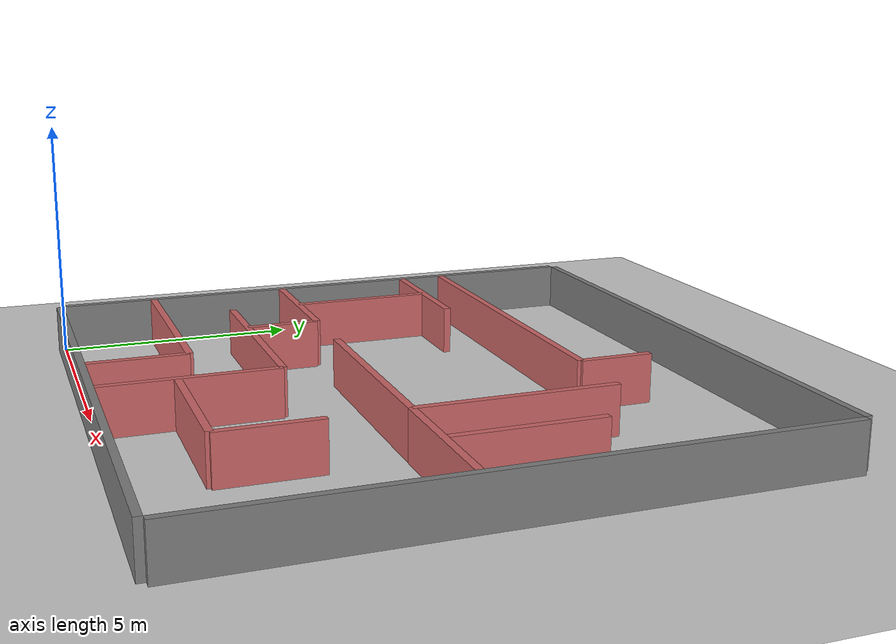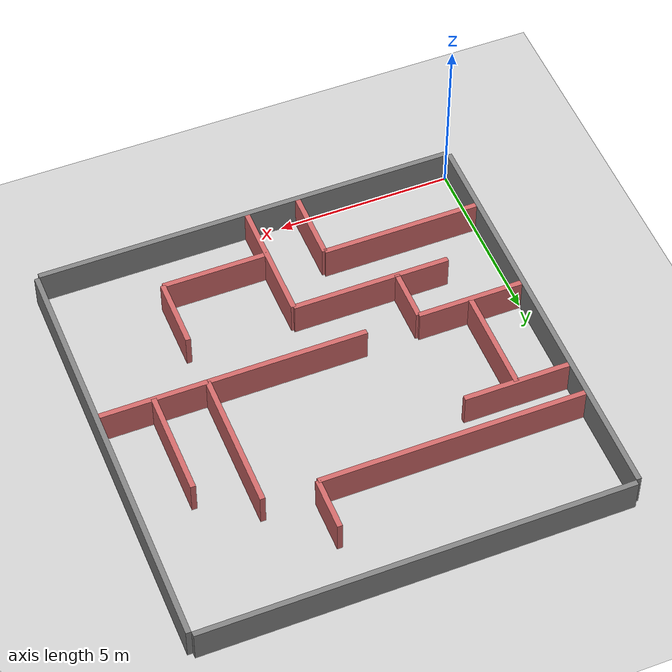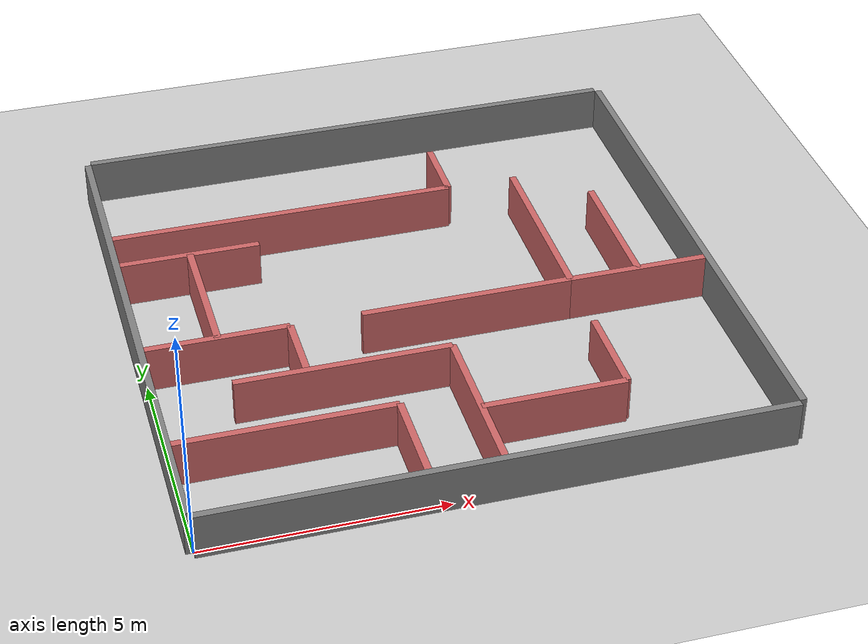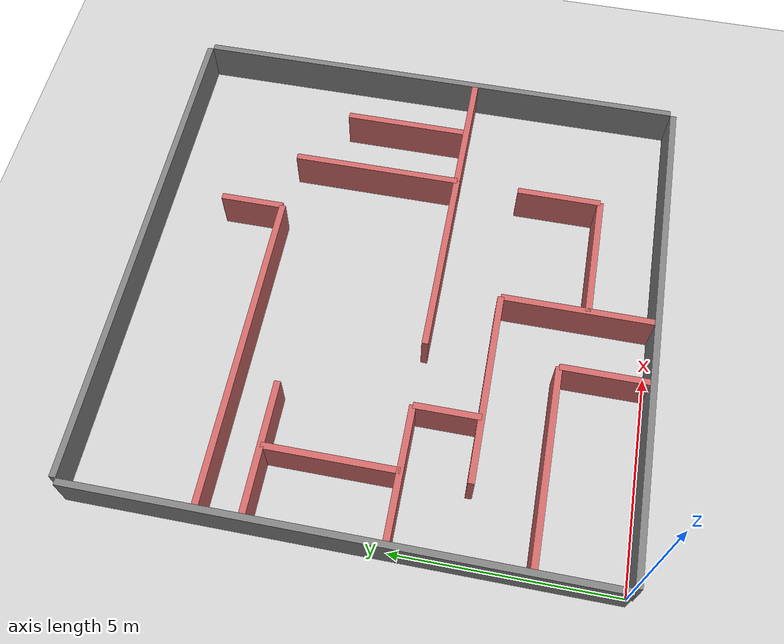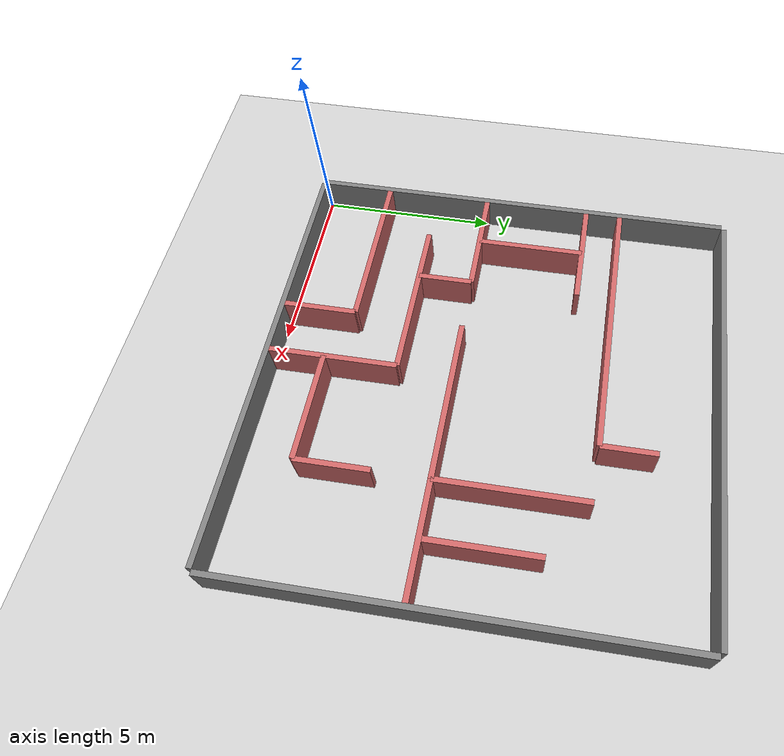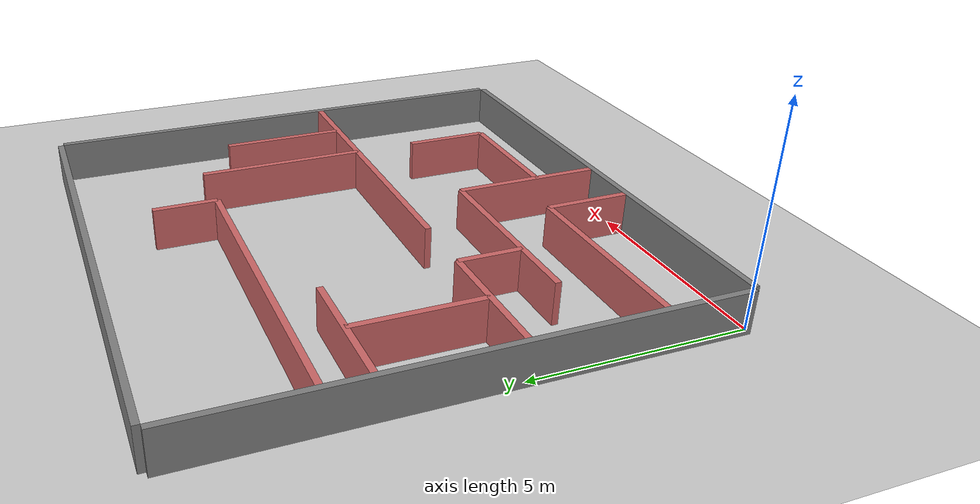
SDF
<?xml version="1.0" ?>
<sdf version="1.8">
  <world name="complex_maze_world">
    <physics name="1ms" type="ignored">
      <max_step_size>0.001</max_step_size>
      <real_time_factor>1.0</real_time_factor>
    </physics>
    <plugin filename="libignition-gazebo-physics-system.so" name="ignition::gazebo::systems::Physics"></plugin>
    <plugin filename="libignition-gazebo-user-commands-system.so" name="ignition::gazebo::systems::UserCommands"></plugin>
    <plugin filename="libignition-gazebo-scene-broadcaster-system.so" name="ignition::gazebo::systems::SceneBroadcaster"></plugin>
    <plugin filename="gz-sim-sensors-system" name="gz::sim::systems::Sensors">
      <render_engine>ogre2</render_engine>
    </plugin>

    <light type="directional" name="sun">
      <cast_shadows>true</cast_shadows>
      <pose>0 0 10 0 0 0</pose>
      <diffuse>0.8 0.8 0.8 1</diffuse>
      <specular>0.2 0.2 0.2 1</specular>
      <attenuation><range>1000</range><constant>0.9</constant><linear>0.01</linear><quadratic>0.001</quadratic></attenuation>
      <direction>-0.5 0.1 -0.9</direction>
    </light>

    <model name="ground_plane">
      <static>true</static>
      <link name="link">
        <collision name="collision"><geometry><plane><normal>0 0 1</normal><size>100 100</size></plane></geometry></collision>
        <visual name="visual"><geometry><plane><normal>0 0 1</normal><size>100 100</size></plane></geometry>
          <material><ambient>0.8 0.8 0.8 1</ambient><diffuse>0.8 0.8 0.8 1</diffuse><specular>0.8 0.8 0.8 1</specular></material>
        </visual>
      </link>
    </model>

    <!-- Outer Boundary Walls (12x12m) -->
    <model name="outer_south">
      <pose>6 -0.075 0.5 0 0 0</pose><static>true</static>
      <link name="link">
        <collision name="collision"><geometry><box><size>12 0.15 1</size></box></geometry></collision>
        <visual name="visual"><geometry><box><size>12 0.15 1</size></box></geometry><material><ambient>0.5 0.5 0.5 1</ambient><diffuse>0.5 0.5 0.5 1</diffuse></material></visual>
      </link>
    </model>
    <model name="outer_north">
      <pose>6 12.075 0.5 0 0 0</pose><static>true</static>
      <link name="link">
        <collision name="collision"><geometry><box><size>12 0.15 1</size></box></geometry></collision>
        <visual name="visual"><geometry><box><size>12 0.15 1</size></box></geometry><material><ambient>0.5 0.5 0.5 1</ambient><diffuse>0.5 0.5 0.5 1</diffuse></material></visual>
      </link>
    </model>
    <model name="outer_west">
      <pose>-0.075 6 0.5 0 0 1.5708</pose><static>true</static>
      <link name="link">
        <collision name="collision"><geometry><box><size>12 0.15 1</size></box></geometry></collision>
        <visual name="visual"><geometry><box><size>12 0.15 1</size></box></geometry><material><ambient>0.5 0.5 0.5 1</ambient><diffuse>0.5 0.5 0.5 1</diffuse></material></visual>
      </link>
    </model>
    <model name="outer_east">
      <pose>12.075 6 0.5 0 0 1.5708</pose><static>true</static>
      <link name="link">
        <collision name="collision"><geometry><box><size>12 0.15 1</size></box></geometry></collision>
        <visual name="visual"><geometry><box><size>12 0.15 1</size></box></geometry><material><ambient>0.5 0.5 0.5 1</ambient><diffuse>0.5 0.5 0.5 1</diffuse></material></visual>
      </link>
    </model>

    <!-- Zone 1: Bottom-left barriers -->
    <model name="w1"><pose>2.25 2 0.5 0 0 0</pose><static>true</static><link name="link"><collision name="c"><geometry><box><size>4.5 0.15 1</size></box></geometry></collision><visual name="v"><geometry><box><size>4.5 0.15 1</size></box></geometry><material><ambient>0.8 0.4 0.4 1</ambient><diffuse>0.8 0.4 0.4 1</diffuse></material></visual></link></model>
    <model name="w2"><pose>4.5 1 0.5 0 0 1.5708</pose><static>true</static><link name="link"><collision name="c"><geometry><box><size>2 0.15 1</size></box></geometry></collision><visual name="v"><geometry><box><size>2 0.15 1</size></box></geometry><material><ambient>0.8 0.4 0.4 1</ambient><diffuse>0.8 0.4 0.4 1</diffuse></material></visual></link></model>
    <model name="w3"><pose>3.75 3.5 0.5 0 0 0</pose><static>true</static><link name="link"><collision name="c"><geometry><box><size>4.5 0.15 1</size></box></geometry></collision><visual name="v"><geometry><box><size>4.5 0.15 1</size></box></geometry><material><ambient>0.8 0.4 0.4 1</ambient><diffuse>0.8 0.4 0.4 1</diffuse></material></visual></link></model>

    <!-- Zone 2: U-Trap 1 -->
    <model name="w4"><pose>6 1.75 0.5 0 0 1.5708</pose><static>true</static><link name="link"><collision name="c"><geometry><box><size>3.5 0.15 1</size></box></geometry></collision><visual name="v"><geometry><box><size>3.5 0.15 1</size></box></geometry><material><ambient>0.8 0.4 0.4 1</ambient><diffuse>0.8 0.4 0.4 1</diffuse></material></visual></link></model>
    <model name="w5"><pose>7.5 1.5 0.5 0 0 0</pose><static>true</static><link name="link"><collision name="c"><geometry><box><size>3 0.15 1</size></box></geometry></collision><visual name="v"><geometry><box><size>3 0.15 1</size></box></geometry><material><ambient>0.8 0.4 0.4 1</ambient><diffuse>0.8 0.4 0.4 1</diffuse></material></visual></link></model>
    <model name="w6"><pose>9 2.5 0.5 0 0 1.5708</pose><static>true</static><link name="link"><collision name="c"><geometry><box><size>2 0.15 1</size></box></geometry></collision><visual name="v"><geometry><box><size>2 0.15 1</size></box></geometry><material><ambient>0.8 0.4 0.4 1</ambient><diffuse>0.8 0.4 0.4 1</diffuse></material></visual></link></model>

    <!-- Zone 3: Middle barrier -->
    <model name="w7"><pose>1.5 5 0.5 0 0 0</pose><static>true</static><link name="link"><collision name="c"><geometry><box><size>3 0.15 1</size></box></geometry></collision><visual name="v"><geometry><box><size>3 0.15 1</size></box></geometry><material><ambient>0.8 0.4 0.4 1</ambient><diffuse>0.8 0.4 0.4 1</diffuse></material></visual></link></model>
    <model name="w8"><pose>6.75 5 0.5 0 0 0</pose><static>true</static><link name="link"><collision name="c"><geometry><box><size>4.5 0.15 1</size></box></geometry></collision><visual name="v"><geometry><box><size>4.5 0.15 1</size></box></geometry><material><ambient>0.8 0.4 0.4 1</ambient><diffuse>0.8 0.4 0.4 1</diffuse></material></visual></link></model>
    <model name="w9"><pose>3 4.25 0.5 0 0 1.5708</pose><static>true</static><link name="link"><collision name="c"><geometry><box><size>1.5 0.15 1</size></box></geometry></collision><visual name="v"><geometry><box><size>1.5 0.15 1</size></box></geometry><material><ambient>0.8 0.4 0.4 1</ambient><diffuse>0.8 0.4 0.4 1</diffuse></material></visual></link></model>

    <!-- Zone 4: Dead end -->
    <model name="w10"><pose>1.5 6.5 0.5 0 0 1.5708</pose><static>true</static><link name="link"><collision name="c"><geometry><box><size>3 0.15 1</size></box></geometry></collision><visual name="v"><geometry><box><size>3 0.15 1</size></box></geometry><material><ambient>0.8 0.4 0.4 1</ambient><diffuse>0.8 0.4 0.4 1</diffuse></material></visual></link></model>
    <model name="w11"><pose>1.5 8 0.5 0 0 0</pose><static>true</static><link name="link"><collision name="c"><geometry><box><size>3 0.15 1</size></box></geometry></collision><visual name="v"><geometry><box><size>3 0.15 1</size></box></geometry><material><ambient>0.8 0.4 0.4 1</ambient><diffuse>0.8 0.4 0.4 1</diffuse></material></visual></link></model>

    <!-- Zone 5: U-Trap 2 -->
    <model name="w12"><pose>9 7 0.5 0 0 1.5708</pose><static>true</static><link name="link"><collision name="c"><geometry><box><size>4 0.15 1</size></box></geometry></collision><visual name="v"><geometry><box><size>4 0.15 1</size></box></geometry><material><ambient>0.8 0.4 0.4 1</ambient><diffuse>0.8 0.4 0.4 1</diffuse></material></visual></link></model>
    <model name="w13"><pose>10.5 5 0.5 0 0 0</pose><static>true</static><link name="link"><collision name="c"><geometry><box><size>3 0.15 1</size></box></geometry></collision><visual name="v"><geometry><box><size>3 0.15 1</size></box></geometry><material><ambient>0.8 0.4 0.4 1</ambient><diffuse>0.8 0.4 0.4 1</diffuse></material></visual></link></model>
    <model name="w14"><pose>10.5 6.5 0.5 0 0 1.5708</pose><static>true</static><link name="link"><collision name="c"><geometry><box><size>3 0.15 1</size></box></geometry></collision><visual name="v"><geometry><box><size>3 0.15 1</size></box></geometry><material><ambient>0.8 0.4 0.4 1</ambient><diffuse>0.8 0.4 0.4 1</diffuse></material></visual></link></model>

    <!-- Zone 6: Top barrier -->
    <model name="w15"><pose>3.75 9 0.5 0 0 0</pose><static>true</static><link name="link"><collision name="c"><geometry><box><size>7.5 0.15 1</size></box></geometry></collision><visual name="v"><geometry><box><size>7.5 0.15 1</size></box></geometry><material><ambient>0.8 0.4 0.4 1</ambient><diffuse>0.8 0.4 0.4 1</diffuse></material></visual></link></model>
    <model name="w16"><pose>7.5 9.75 0.5 0 0 1.5708</pose><static>true</static><link name="link"><collision name="c"><geometry><box><size>1.5 0.15 1</size></box></geometry></collision><visual name="v"><geometry><box><size>1.5 0.15 1</size></box></geometry><material><ambient>0.8 0.4 0.4 1</ambient><diffuse>0.8 0.4 0.4 1</diffuse></material></visual></link></model>

  </world>
</sdf>
